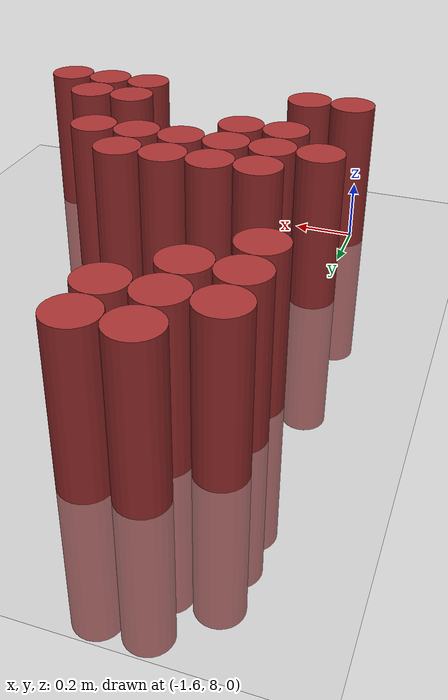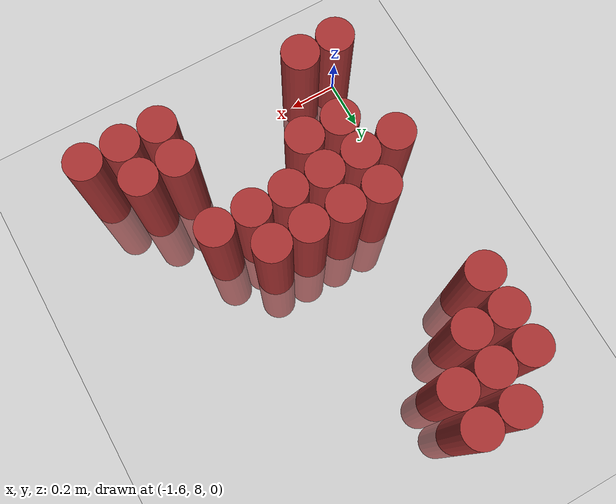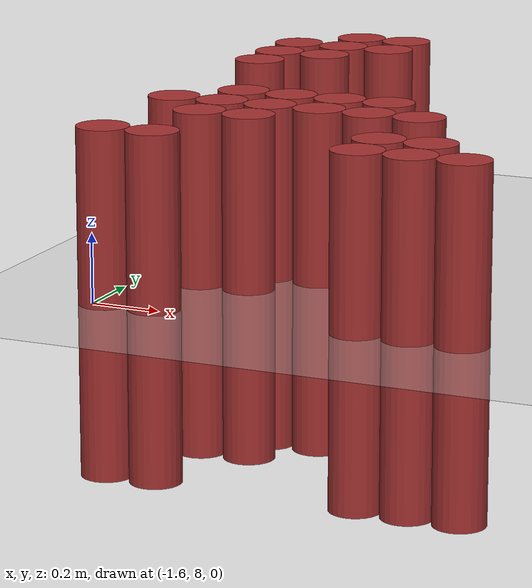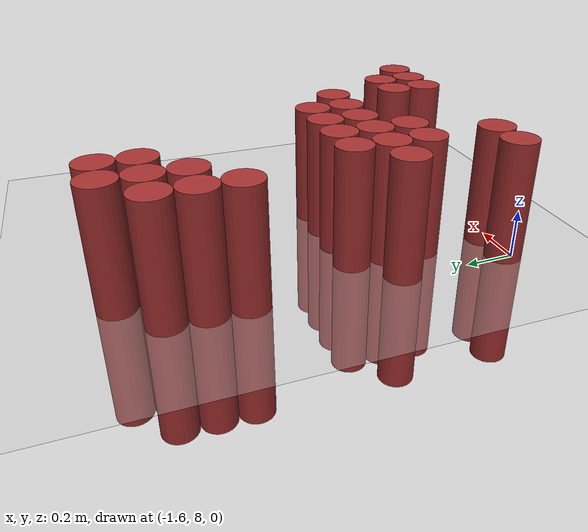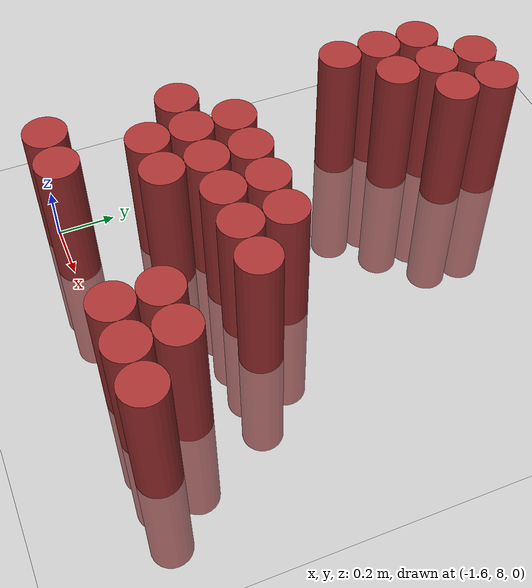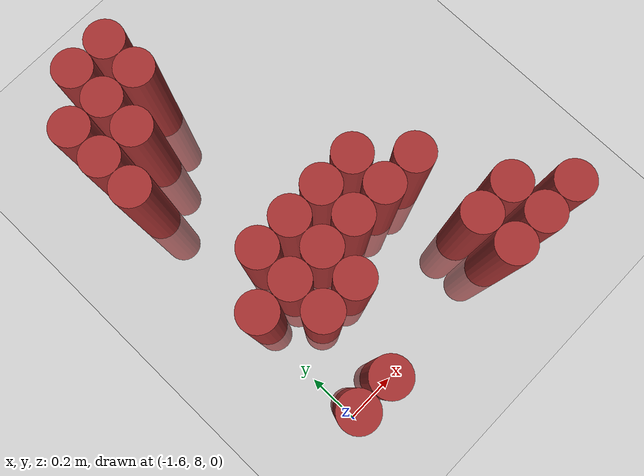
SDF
<sdf version="1.6">
 <world name="default">
  <model name="ground_plane">
   <static>1</static>
   <link name="link">
    <collision name="collision">
     <geometry><plane><normal>0 0 1</normal><size>100 100</size></plane></geometry>
     <surface><friction><ode><mu>100</mu><mu2>50</mu2></ode></friction></surface>
    </collision>
    <visual name="visual">
     <cast_shadows>0</cast_shadows>
     <geometry><plane><normal>0 0 1</normal><size>100 100</size></plane></geometry>
     <material>
      <script><uri>file://media/materials/scripts/gazebo.material</uri><name>Gazebo/Grey</name></script>
     </material>
    </visual>
   </link>
  </model>
  <model name="unit_cylinder_255">
   <static>1</static>
   <pose>-1.575000 8.025000 0.000000 0.000000 0.000000 0.000000</pose>
   <link name="link">
    <inertial>
     <mass>1</mass>
     <inertia><ixx>0.145833</ixx><ixy>0</ixy><ixz>0</ixz><iyy>0.145833</iyy><iyz>0</iyz><izz>0.125</izz></inertia>
    </inertial>
    <collision name="collision">
     <geometry><cylinder><radius>0.075000</radius><length>1</length></cylinder></geometry>
    </collision>
    <visual name="visual">
     <geometry><cylinder><radius>0.075000</radius><length>1</length></cylinder></geometry>
     <material>
      <ambient>0.648000 0.192000 0.192000 1</ambient>
      <diffuse>0.648000 0.192000 0.192000 1</diffuse>
     </material>
     <material>
      <script><name>Gazebo/Grey</name><uri>file://media/materials/scripts/gazebo.material</uri></script>
     </material>
    </visual>
   </link>
  </model>
  <model name="unit_cylinder_256">
   <static>1</static>
   <pose>-1.575000 8.475000 0.000000 0.000000 0.000000 0.000000</pose>
   <link name="link">
    <inertial>
     <mass>1</mass>
     <inertia><ixx>0.145833</ixx><ixy>0</ixy><ixz>0</ixz><iyy>0.145833</iyy><iyz>0</iyz><izz>0.125</izz></inertia>
    </inertial>
    <collision name="collision">
     <geometry><cylinder><radius>0.075000</radius><length>1</length></cylinder></geometry>
    </collision>
    <visual name="visual">
     <geometry><cylinder><radius>0.075000</radius><length>1</length></cylinder></geometry>
     <material>
      <ambient>0.648000 0.192000 0.192000 1</ambient>
      <diffuse>0.648000 0.192000 0.192000 1</diffuse>
     </material>
     <material>
      <script><name>Gazebo/Grey</name><uri>file://media/materials/scripts/gazebo.material</uri></script>
     </material>
    </visual>
   </link>
  </model>
  <model name="unit_cylinder_257">
   <static>1</static>
   <pose>-1.575000 9.075000 0.000000 0.000000 0.000000 0.000000</pose>
   <link name="link">
    <inertial>
     <mass>1</mass>
     <inertia><ixx>0.145833</ixx><ixy>0</ixy><ixz>0</ixz><iyy>0.145833</iyy><iyz>0</iyz><izz>0.125</izz></inertia>
    </inertial>
    <collision name="collision">
     <geometry><cylinder><radius>0.075000</radius><length>1</length></cylinder></geometry>
    </collision>
    <visual name="visual">
     <geometry><cylinder><radius>0.075000</radius><length>1</length></cylinder></geometry>
     <material>
      <ambient>0.648000 0.192000 0.192000 1</ambient>
      <diffuse>0.648000 0.192000 0.192000 1</diffuse>
     </material>
     <material>
      <script><name>Gazebo/Grey</name><uri>file://media/materials/scripts/gazebo.material</uri></script>
     </material>
    </visual>
   </link>
  </model>
  <model name="unit_cylinder_258">
   <static>1</static>
   <pose>-1.575000 9.225000 0.000000 0.000000 0.000000 0.000000</pose>
   <link name="link">
    <inertial>
     <mass>1</mass>
     <inertia><ixx>0.145833</ixx><ixy>0</ixy><ixz>0</ixz><iyy>0.145833</iyy><iyz>0</iyz><izz>0.125</izz></inertia>
    </inertial>
    <collision name="collision">
     <geometry><cylinder><radius>0.075000</radius><length>1</length></cylinder></geometry>
    </collision>
    <visual name="visual">
     <geometry><cylinder><radius>0.075000</radius><length>1</length></cylinder></geometry>
     <material>
      <ambient>0.648000 0.192000 0.192000 1</ambient>
      <diffuse>0.648000 0.192000 0.192000 1</diffuse>
     </material>
     <material>
      <script><name>Gazebo/Grey</name><uri>file://media/materials/scripts/gazebo.material</uri></script>
     </material>
    </visual>
   </link>
  </model>
  <model name="unit_cylinder_259">
   <static>1</static>
   <pose>-1.575000 9.375000 0.000000 0.000000 0.000000 0.000000</pose>
   <link name="link">
    <inertial>
     <mass>1</mass>
     <inertia><ixx>0.145833</ixx><ixy>0</ixy><ixz>0</ixz><iyy>0.145833</iyy><iyz>0</iyz><izz>0.125</izz></inertia>
    </inertial>
    <collision name="collision">
     <geometry><cylinder><radius>0.075000</radius><length>1</length></cylinder></geometry>
    </collision>
    <visual name="visual">
     <geometry><cylinder><radius>0.075000</radius><length>1</length></cylinder></geometry>
     <material>
      <ambient>0.648000 0.192000 0.192000 1</ambient>
      <diffuse>0.648000 0.192000 0.192000 1</diffuse>
     </material>
     <material>
      <script><name>Gazebo/Grey</name><uri>file://media/materials/scripts/gazebo.material</uri></script>
     </material>
    </visual>
   </link>
  </model>
  <model name="unit_cylinder_264">
   <static>1</static>
   <pose>-1.425000 8.025000 0.000000 0.000000 0.000000 0.000000</pose>
   <link name="link">
    <inertial>
     <mass>1</mass>
     <inertia><ixx>0.145833</ixx><ixy>0</ixy><ixz>0</ixz><iyy>0.145833</iyy><iyz>0</iyz><izz>0.125</izz></inertia>
    </inertial>
    <collision name="collision">
     <geometry><cylinder><radius>0.075000</radius><length>1</length></cylinder></geometry>
    </collision>
    <visual name="visual">
     <geometry><cylinder><radius>0.075000</radius><length>1</length></cylinder></geometry>
     <material>
      <ambient>0.648000 0.192000 0.192000 1</ambient>
      <diffuse>0.648000 0.192000 0.192000 1</diffuse>
     </material>
     <material>
      <script><name>Gazebo/Grey</name><uri>file://media/materials/scripts/gazebo.material</uri></script>
     </material>
    </visual>
   </link>
  </model>
  <model name="unit_cylinder_265">
   <static>1</static>
   <pose>-1.425000 8.325000 0.000000 0.000000 0.000000 0.000000</pose>
   <link name="link">
    <inertial>
     <mass>1</mass>
     <inertia><ixx>0.145833</ixx><ixy>0</ixy><ixz>0</ixz><iyy>0.145833</iyy><iyz>0</iyz><izz>0.125</izz></inertia>
    </inertial>
    <collision name="collision">
     <geometry><cylinder><radius>0.075000</radius><length>1</length></cylinder></geometry>
    </collision>
    <visual name="visual">
     <geometry><cylinder><radius>0.075000</radius><length>1</length></cylinder></geometry>
     <material>
      <ambient>0.648000 0.192000 0.192000 1</ambient>
      <diffuse>0.648000 0.192000 0.192000 1</diffuse>
     </material>
     <material>
      <script><name>Gazebo/Grey</name><uri>file://media/materials/scripts/gazebo.material</uri></script>
     </material>
    </visual>
   </link>
  </model>
  <model name="unit_cylinder_266">
   <static>1</static>
   <pose>-1.425000 8.475000 0.000000 0.000000 0.000000 0.000000</pose>
   <link name="link">
    <inertial>
     <mass>1</mass>
     <inertia><ixx>0.145833</ixx><ixy>0</ixy><ixz>0</ixz><iyy>0.145833</iyy><iyz>0</iyz><izz>0.125</izz></inertia>
    </inertial>
    <collision name="collision">
     <geometry><cylinder><radius>0.075000</radius><length>1</length></cylinder></geometry>
    </collision>
    <visual name="visual">
     <geometry><cylinder><radius>0.075000</radius><length>1</length></cylinder></geometry>
     <material>
      <ambient>0.648000 0.192000 0.192000 1</ambient>
      <diffuse>0.648000 0.192000 0.192000 1</diffuse>
     </material>
     <material>
      <script><name>Gazebo/Grey</name><uri>file://media/materials/scripts/gazebo.material</uri></script>
     </material>
    </visual>
   </link>
  </model>
  <model name="unit_cylinder_267">
   <static>1</static>
   <pose>-1.425000 8.625000 0.000000 0.000000 0.000000 0.000000</pose>
   <link name="link">
    <inertial>
     <mass>1</mass>
     <inertia><ixx>0.145833</ixx><ixy>0</ixy><ixz>0</ixz><iyy>0.145833</iyy><iyz>0</iyz><izz>0.125</izz></inertia>
    </inertial>
    <collision name="collision">
     <geometry><cylinder><radius>0.075000</radius><length>1</length></cylinder></geometry>
    </collision>
    <visual name="visual">
     <geometry><cylinder><radius>0.075000</radius><length>1</length></cylinder></geometry>
     <material>
      <ambient>0.648000 0.192000 0.192000 1</ambient>
      <diffuse>0.648000 0.192000 0.192000 1</diffuse>
     </material>
     <material>
      <script><name>Gazebo/Grey</name><uri>file://media/materials/scripts/gazebo.material</uri></script>
     </material>
    </visual>
   </link>
  </model>
  <model name="unit_cylinder_268">
   <static>1</static>
   <pose>-1.425000 9.225000 0.000000 0.000000 0.000000 0.000000</pose>
   <link name="link">
    <inertial>
     <mass>1</mass>
     <inertia><ixx>0.145833</ixx><ixy>0</ixy><ixz>0</ixz><iyy>0.145833</iyy><iyz>0</iyz><izz>0.125</izz></inertia>
    </inertial>
    <collision name="collision">
     <geometry><cylinder><radius>0.075000</radius><length>1</length></cylinder></geometry>
    </collision>
    <visual name="visual">
     <geometry><cylinder><radius>0.075000</radius><length>1</length></cylinder></geometry>
     <material>
      <ambient>0.648000 0.192000 0.192000 1</ambient>
      <diffuse>0.648000 0.192000 0.192000 1</diffuse>
     </material>
     <material>
      <script><name>Gazebo/Grey</name><uri>file://media/materials/scripts/gazebo.material</uri></script>
     </material>
    </visual>
   </link>
  </model>
  <model name="unit_cylinder_269">
   <static>1</static>
   <pose>-1.425000 9.375000 0.000000 0.000000 0.000000 0.000000</pose>
   <link name="link">
    <inertial>
     <mass>1</mass>
     <inertia><ixx>0.145833</ixx><ixy>0</ixy><ixz>0</ixz><iyy>0.145833</iyy><iyz>0</iyz><izz>0.125</izz></inertia>
    </inertial>
    <collision name="collision">
     <geometry><cylinder><radius>0.075000</radius><length>1</length></cylinder></geometry>
    </collision>
    <visual name="visual">
     <geometry><cylinder><radius>0.075000</radius><length>1</length></cylinder></geometry>
     <material>
      <ambient>0.648000 0.192000 0.192000 1</ambient>
      <diffuse>0.648000 0.192000 0.192000 1</diffuse>
     </material>
     <material>
      <script><name>Gazebo/Grey</name><uri>file://media/materials/scripts/gazebo.material</uri></script>
     </material>
    </visual>
   </link>
  </model>
  <model name="unit_cylinder_270">
   <static>1</static>
   <pose>-1.425000 9.525000 0.000000 0.000000 0.000000 0.000000</pose>
   <link name="link">
    <inertial>
     <mass>1</mass>
     <inertia><ixx>0.145833</ixx><ixy>0</ixy><ixz>0</ixz><iyy>0.145833</iyy><iyz>0</iyz><izz>0.125</izz></inertia>
    </inertial>
    <collision name="collision">
     <geometry><cylinder><radius>0.075000</radius><length>1</length></cylinder></geometry>
    </collision>
    <visual name="visual">
     <geometry><cylinder><radius>0.075000</radius><length>1</length></cylinder></geometry>
     <material>
      <ambient>0.648000 0.192000 0.192000 1</ambient>
      <diffuse>0.648000 0.192000 0.192000 1</diffuse>
     </material>
     <material>
      <script><name>Gazebo/Grey</name><uri>file://media/materials/scripts/gazebo.material</uri></script>
     </material>
    </visual>
   </link>
  </model>
  <model name="unit_cylinder_273">
   <static>1</static>
   <pose>-1.275000 8.325000 0.000000 0.000000 0.000000 0.000000</pose>
   <link name="link">
    <inertial>
     <mass>1</mass>
     <inertia><ixx>0.145833</ixx><ixy>0</ixy><ixz>0</ixz><iyy>0.145833</iyy><iyz>0</iyz><izz>0.125</izz></inertia>
    </inertial>
    <collision name="collision">
     <geometry><cylinder><radius>0.075000</radius><length>1</length></cylinder></geometry>
    </collision>
    <visual name="visual">
     <geometry><cylinder><radius>0.075000</radius><length>1</length></cylinder></geometry>
     <material>
      <ambient>0.648000 0.192000 0.192000 1</ambient>
      <diffuse>0.648000 0.192000 0.192000 1</diffuse>
     </material>
     <material>
      <script><name>Gazebo/Grey</name><uri>file://media/materials/scripts/gazebo.material</uri></script>
     </material>
    </visual>
   </link>
  </model>
  <model name="unit_cylinder_274">
   <static>1</static>
   <pose>-1.275000 8.475000 0.000000 0.000000 0.000000 0.000000</pose>
   <link name="link">
    <inertial>
     <mass>1</mass>
     <inertia><ixx>0.145833</ixx><ixy>0</ixy><ixz>0</ixz><iyy>0.145833</iyy><iyz>0</iyz><izz>0.125</izz></inertia>
    </inertial>
    <collision name="collision">
     <geometry><cylinder><radius>0.075000</radius><length>1</length></cylinder></geometry>
    </collision>
    <visual name="visual">
     <geometry><cylinder><radius>0.075000</radius><length>1</length></cylinder></geometry>
     <material>
      <ambient>0.648000 0.192000 0.192000 1</ambient>
      <diffuse>0.648000 0.192000 0.192000 1</diffuse>
     </material>
     <material>
      <script><name>Gazebo/Grey</name><uri>file://media/materials/scripts/gazebo.material</uri></script>
     </material>
    </visual>
   </link>
  </model>
  <model name="unit_cylinder_275">
   <static>1</static>
   <pose>-1.275000 8.625000 0.000000 0.000000 0.000000 0.000000</pose>
   <link name="link">
    <inertial>
     <mass>1</mass>
     <inertia><ixx>0.145833</ixx><ixy>0</ixy><ixz>0</ixz><iyy>0.145833</iyy><iyz>0</iyz><izz>0.125</izz></inertia>
    </inertial>
    <collision name="collision">
     <geometry><cylinder><radius>0.075000</radius><length>1</length></cylinder></geometry>
    </collision>
    <visual name="visual">
     <geometry><cylinder><radius>0.075000</radius><length>1</length></cylinder></geometry>
     <material>
      <ambient>0.648000 0.192000 0.192000 1</ambient>
      <diffuse>0.648000 0.192000 0.192000 1</diffuse>
     </material>
     <material>
      <script><name>Gazebo/Grey</name><uri>file://media/materials/scripts/gazebo.material</uri></script>
     </material>
    </visual>
   </link>
  </model>
  <model name="unit_cylinder_276">
   <static>1</static>
   <pose>-1.275000 9.375000 0.000000 0.000000 0.000000 0.000000</pose>
   <link name="link">
    <inertial>
     <mass>1</mass>
     <inertia><ixx>0.145833</ixx><ixy>0</ixy><ixz>0</ixz><iyy>0.145833</iyy><iyz>0</iyz><izz>0.125</izz></inertia>
    </inertial>
    <collision name="collision">
     <geometry><cylinder><radius>0.075000</radius><length>1</length></cylinder></geometry>
    </collision>
    <visual name="visual">
     <geometry><cylinder><radius>0.075000</radius><length>1</length></cylinder></geometry>
     <material>
      <ambient>0.648000 0.192000 0.192000 1</ambient>
      <diffuse>0.648000 0.192000 0.192000 1</diffuse>
     </material>
     <material>
      <script><name>Gazebo/Grey</name><uri>file://media/materials/scripts/gazebo.material</uri></script>
     </material>
    </visual>
   </link>
  </model>
  <model name="unit_cylinder_277">
   <static>1</static>
   <pose>-1.275000 9.525000 0.000000 0.000000 0.000000 0.000000</pose>
   <link name="link">
    <inertial>
     <mass>1</mass>
     <inertia><ixx>0.145833</ixx><ixy>0</ixy><ixz>0</ixz><iyy>0.145833</iyy><iyz>0</iyz><izz>0.125</izz></inertia>
    </inertial>
    <collision name="collision">
     <geometry><cylinder><radius>0.075000</radius><length>1</length></cylinder></geometry>
    </collision>
    <visual name="visual">
     <geometry><cylinder><radius>0.075000</radius><length>1</length></cylinder></geometry>
     <material>
      <ambient>0.648000 0.192000 0.192000 1</ambient>
      <diffuse>0.648000 0.192000 0.192000 1</diffuse>
     </material>
     <material>
      <script><name>Gazebo/Grey</name><uri>file://media/materials/scripts/gazebo.material</uri></script>
     </material>
    </visual>
   </link>
  </model>
  <model name="unit_cylinder_282">
   <static>1</static>
   <pose>-1.125000 8.475000 0.000000 0.000000 0.000000 0.000000</pose>
   <link name="link">
    <inertial>
     <mass>1</mass>
     <inertia><ixx>0.145833</ixx><ixy>0</ixy><ixz>0</ixz><iyy>0.145833</iyy><iyz>0</iyz><izz>0.125</izz></inertia>
    </inertial>
    <collision name="collision">
     <geometry><cylinder><radius>0.075000</radius><length>1</length></cylinder></geometry>
    </collision>
    <visual name="visual">
     <geometry><cylinder><radius>0.075000</radius><length>1</length></cylinder></geometry>
     <material>
      <ambient>0.648000 0.192000 0.192000 1</ambient>
      <diffuse>0.648000 0.192000 0.192000 1</diffuse>
     </material>
     <material>
      <script><name>Gazebo/Grey</name><uri>file://media/materials/scripts/gazebo.material</uri></script>
     </material>
    </visual>
   </link>
  </model>
  <model name="unit_cylinder_283">
   <static>1</static>
   <pose>-1.125000 8.625000 0.000000 0.000000 0.000000 0.000000</pose>
   <link name="link">
    <inertial>
     <mass>1</mass>
     <inertia><ixx>0.145833</ixx><ixy>0</ixy><ixz>0</ixz><iyy>0.145833</iyy><iyz>0</iyz><izz>0.125</izz></inertia>
    </inertial>
    <collision name="collision">
     <geometry><cylinder><radius>0.075000</radius><length>1</length></cylinder></geometry>
    </collision>
    <visual name="visual">
     <geometry><cylinder><radius>0.075000</radius><length>1</length></cylinder></geometry>
     <material>
      <ambient>0.648000 0.192000 0.192000 1</ambient>
      <diffuse>0.648000 0.192000 0.192000 1</diffuse>
     </material>
     <material>
      <script><name>Gazebo/Grey</name><uri>file://media/materials/scripts/gazebo.material</uri></script>
     </material>
    </visual>
   </link>
  </model>
  <model name="unit_cylinder_290">
   <static>1</static>
   <pose>-0.975000 8.475000 0.000000 0.000000 0.000000 0.000000</pose>
   <link name="link">
    <inertial>
     <mass>1</mass>
     <inertia><ixx>0.145833</ixx><ixy>0</ixy><ixz>0</ixz><iyy>0.145833</iyy><iyz>0</iyz><izz>0.125</izz></inertia>
    </inertial>
    <collision name="collision">
     <geometry><cylinder><radius>0.075000</radius><length>1</length></cylinder></geometry>
    </collision>
    <visual name="visual">
     <geometry><cylinder><radius>0.075000</radius><length>1</length></cylinder></geometry>
     <material>
      <ambient>0.648000 0.192000 0.192000 1</ambient>
      <diffuse>0.648000 0.192000 0.192000 1</diffuse>
     </material>
     <material>
      <script><name>Gazebo/Grey</name><uri>file://media/materials/scripts/gazebo.material</uri></script>
     </material>
    </visual>
   </link>
  </model>
  <model name="unit_cylinder_291">
   <static>1</static>
   <pose>-0.975000 8.625000 0.000000 0.000000 0.000000 0.000000</pose>
   <link name="link">
    <inertial>
     <mass>1</mass>
     <inertia><ixx>0.145833</ixx><ixy>0</ixy><ixz>0</ixz><iyy>0.145833</iyy><iyz>0</iyz><izz>0.125</izz></inertia>
    </inertial>
    <collision name="collision">
     <geometry><cylinder><radius>0.075000</radius><length>1</length></cylinder></geometry>
    </collision>
    <visual name="visual">
     <geometry><cylinder><radius>0.075000</radius><length>1</length></cylinder></geometry>
     <material>
      <ambient>0.648000 0.192000 0.192000 1</ambient>
      <diffuse>0.648000 0.192000 0.192000 1</diffuse>
     </material>
     <material>
      <script><name>Gazebo/Grey</name><uri>file://media/materials/scripts/gazebo.material</uri></script>
     </material>
    </visual>
   </link>
  </model>
  <model name="unit_cylinder_299">
   <static>1</static>
   <pose>-0.825000 8.025000 0.000000 0.000000 0.000000 0.000000</pose>
   <link name="link">
    <inertial>
     <mass>1</mass>
     <inertia><ixx>0.145833</ixx><ixy>0</ixy><ixz>0</ixz><iyy>0.145833</iyy><iyz>0</iyz><izz>0.125</izz></inertia>
    </inertial>
    <collision name="collision">
     <geometry><cylinder><radius>0.075000</radius><length>1</length></cylinder></geometry>
    </collision>
    <visual name="visual">
     <geometry><cylinder><radius>0.075000</radius><length>1</length></cylinder></geometry>
     <material>
      <ambient>0.648000 0.192000 0.192000 1</ambient>
      <diffuse>0.648000 0.192000 0.192000 1</diffuse>
     </material>
     <material>
      <script><name>Gazebo/Grey</name><uri>file://media/materials/scripts/gazebo.material</uri></script>
     </material>
    </visual>
   </link>
  </model>
  <model name="unit_cylinder_300">
   <static>1</static>
   <pose>-0.825000 8.175000 0.000000 0.000000 0.000000 0.000000</pose>
   <link name="link">
    <inertial>
     <mass>1</mass>
     <inertia><ixx>0.145833</ixx><ixy>0</ixy><ixz>0</ixz><iyy>0.145833</iyy><iyz>0</iyz><izz>0.125</izz></inertia>
    </inertial>
    <collision name="collision">
     <geometry><cylinder><radius>0.075000</radius><length>1</length></cylinder></geometry>
    </collision>
    <visual name="visual">
     <geometry><cylinder><radius>0.075000</radius><length>1</length></cylinder></geometry>
     <material>
      <ambient>0.648000 0.192000 0.192000 1</ambient>
      <diffuse>0.648000 0.192000 0.192000 1</diffuse>
     </material>
     <material>
      <script><name>Gazebo/Grey</name><uri>file://media/materials/scripts/gazebo.material</uri></script>
     </material>
    </visual>
   </link>
  </model>
  <model name="unit_cylinder_301">
   <static>1</static>
   <pose>-0.825000 8.475000 0.000000 0.000000 0.000000 0.000000</pose>
   <link name="link">
    <inertial>
     <mass>1</mass>
     <inertia><ixx>0.145833</ixx><ixy>0</ixy><ixz>0</ixz><iyy>0.145833</iyy><iyz>0</iyz><izz>0.125</izz></inertia>
    </inertial>
    <collision name="collision">
     <geometry><cylinder><radius>0.075000</radius><length>1</length></cylinder></geometry>
    </collision>
    <visual name="visual">
     <geometry><cylinder><radius>0.075000</radius><length>1</length></cylinder></geometry>
     <material>
      <ambient>0.648000 0.192000 0.192000 1</ambient>
      <diffuse>0.648000 0.192000 0.192000 1</diffuse>
     </material>
     <material>
      <script><name>Gazebo/Grey</name><uri>file://media/materials/scripts/gazebo.material</uri></script>
     </material>
    </visual>
   </link>
  </model>
  <model name="unit_cylinder_307">
   <static>1</static>
   <pose>-0.675000 8.025000 0.000000 0.000000 0.000000 0.000000</pose>
   <link name="link">
    <inertial>
     <mass>1</mass>
     <inertia><ixx>0.145833</ixx><ixy>0</ixy><ixz>0</ixz><iyy>0.145833</iyy><iyz>0</iyz><izz>0.125</izz></inertia>
    </inertial>
    <collision name="collision">
     <geometry><cylinder><radius>0.075000</radius><length>1</length></cylinder></geometry>
    </collision>
    <visual name="visual">
     <geometry><cylinder><radius>0.075000</radius><length>1</length></cylinder></geometry>
     <material>
      <ambient>0.648000 0.192000 0.192000 1</ambient>
      <diffuse>0.648000 0.192000 0.192000 1</diffuse>
     </material>
     <material>
      <script><name>Gazebo/Grey</name><uri>file://media/materials/scripts/gazebo.material</uri></script>
     </material>
    </visual>
   </link>
  </model>
  <model name="unit_cylinder_308">
   <static>1</static>
   <pose>-0.675000 8.175000 0.000000 0.000000 0.000000 0.000000</pose>
   <link name="link">
    <inertial>
     <mass>1</mass>
     <inertia><ixx>0.145833</ixx><ixy>0</ixy><ixz>0</ixz><iyy>0.145833</iyy><iyz>0</iyz><izz>0.125</izz></inertia>
    </inertial>
    <collision name="collision">
     <geometry><cylinder><radius>0.075000</radius><length>1</length></cylinder></geometry>
    </collision>
    <visual name="visual">
     <geometry><cylinder><radius>0.075000</radius><length>1</length></cylinder></geometry>
     <material>
      <ambient>0.648000 0.192000 0.192000 1</ambient>
      <diffuse>0.648000 0.192000 0.192000 1</diffuse>
     </material>
     <material>
      <script><name>Gazebo/Grey</name><uri>file://media/materials/scripts/gazebo.material</uri></script>
     </material>
    </visual>
   </link>
  </model>
  <model name="unit_cylinder_314">
   <static>1</static>
   <pose>-0.525000 8.025000 0.000000 0.000000 0.000000 0.000000</pose>
   <link name="link">
    <inertial>
     <mass>1</mass>
     <inertia><ixx>0.145833</ixx><ixy>0</ixy><ixz>0</ixz><iyy>0.145833</iyy><iyz>0</iyz><izz>0.125</izz></inertia>
    </inertial>
    <collision name="collision">
     <geometry><cylinder><radius>0.075000</radius><length>1</length></cylinder></geometry>
    </collision>
    <visual name="visual">
     <geometry><cylinder><radius>0.075000</radius><length>1</length></cylinder></geometry>
     <material>
      <ambient>0.648000 0.192000 0.192000 1</ambient>
      <diffuse>0.648000 0.192000 0.192000 1</diffuse>
     </material>
     <material>
      <script><name>Gazebo/Grey</name><uri>file://media/materials/scripts/gazebo.material</uri></script>
     </material>
    </visual>
   </link>
  </model>
 </world>
</sdf>
